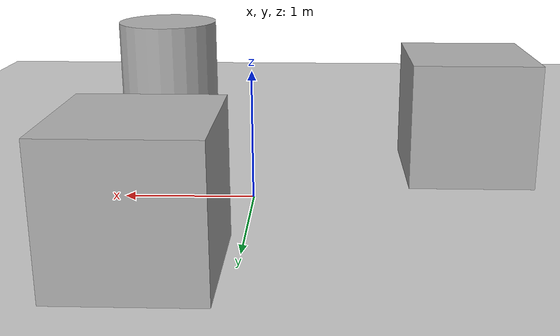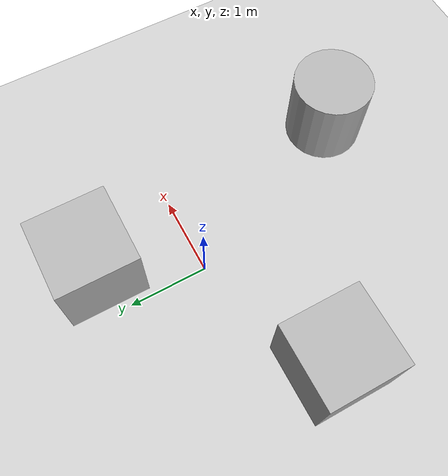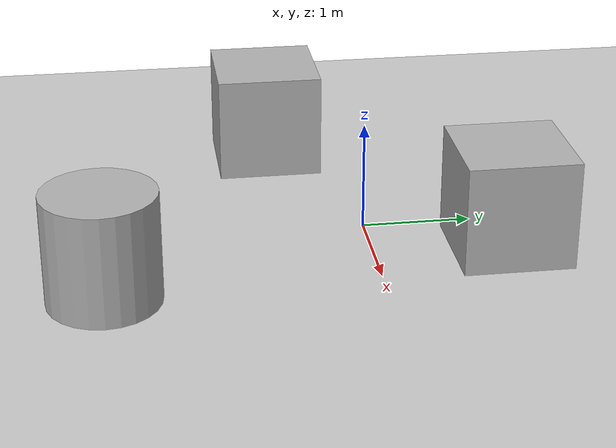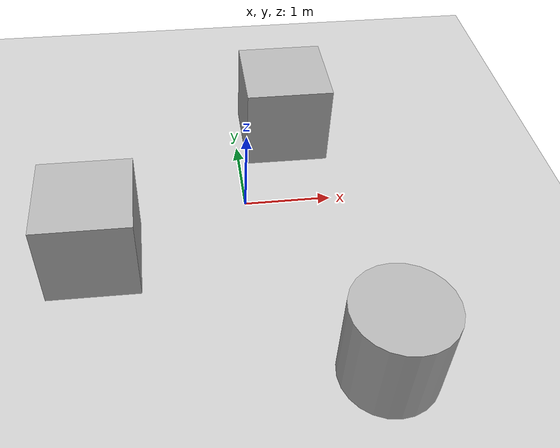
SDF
<?xml version="1.0" ?>
<sdf version="1.6">
  <world name="simple">
    <physics name="10ms" type="ignored">
      <max_step_size>0.01</max_step_size>
      <real_time_factor>1.0</real_time_factor>
      <real_time_update_rate>100</real_time_update_rate>
    </physics>
    <plugin
      filename="ignition-gazebo-physics-system"
      name="gz::sim::systems::Physics">
    </plugin>
    <plugin
      filename="ignition-gazebo-user-commands-system"
      name="gz::sim::systems::UserCommands">
    </plugin>
    <plugin
      filename="ignition-gazebo-scene-broadcaster-system"
      name="gz::sim::systems::SceneBroadcaster">
    </plugin>
    <plugin
      filename="ignition-gazebo-contact-system"
      name="gz::sim::systems::Contact">
    </plugin>

    <light type="directional" name="sun">
      <cast_shadows>true</cast_shadows>
      <pose>0 0 10 0 0 0</pose>
      <diffuse>0.8 0.8 0.8 1</diffuse>
      <specular>0.2 0.2 0.2 1</specular>
      <attenuation>
        <range>1000</range>
        <constant>0.9</constant>
        <linear>0.01</linear>
        <quadratic>0.001</quadratic>
      </attenuation>
      <direction>-0.5 0.1 -0.9</direction>
    </light>

    <model name="ground_plane">
      <static>true</static>
      <link name="link">
        <collision name="collision">
          <geometry>
            <plane>
              <normal>0 0 1</normal>
              <size>100 100</size>
            </plane>
          </geometry>
        </collision>
        <visual name="visual">
          <geometry>
            <plane>
              <normal>0 0 1</normal>
              <size>100 100</size>
            </plane>
          </geometry>
          <material>
            <ambient>0.8 0.8 0.8 1</ambient>
            <diffuse>0.8 0.8 0.8 1</diffuse>
            <specular>0.8 0.8 0.8 1</specular>
          </material>
        </visual>
      </link>
    </model>

    <model name='box'>
      <pose>0.596654 1.20805 0.5 0 0 -0</pose>
      <link name='box_link'>
        <inertial>
          <inertia>
            <ixx>0.16666</ixx>
            <ixy>0</ixy>
            <ixz>0</ixz>
            <iyy>0.16666</iyy>
            <iyz>0</iyz>
            <izz>0.16666</izz>
          </inertia>
          <mass>1</mass>
          <pose>0 0 0 0 -0 0</pose>
        </inertial>
        <collision name='box_collision'>
          <geometry>
            <box>
              <size>1 1 1</size>
            </box>
          </geometry>
          <surface>
            <friction>
              <ode/>
            </friction>
            <bounce/>
            <contact/>
          </surface>
        </collision>
        <visual name='box_visual'>
          <geometry>
            <box>
              <size>1 1 1</size>
            </box>
          </geometry>
          <material>
            <ambient>0.3 0.3 0.3 1</ambient>
            <diffuse>0.7 0.7 0.7 1</diffuse>
            <specular>1 1 1 1</specular>
          </material>
        </visual>
        <pose>0 0 0 0 -0 0</pose>
        <enable_wind>false</enable_wind>
      </link>
      <static>false</static>
      <self_collide>false</self_collide>
    </model>

    <model name='cylinder'>
      <pose>1.09405 -2.39699 0.499999 0 0 -0</pose>
      <link name='cylinder_link'>
        <inertial>
          <inertia>
            <ixx>0.14580000000000001</ixx>
            <ixy>0</ixy>
            <ixz>0</ixz>
            <iyy>0.14580000000000001</iyy>
            <iyz>0</iyz>
            <izz>0.125</izz>
          </inertia>
          <mass>1</mass>
          <pose>0 0 0 0 -0 0</pose>
        </inertial>
        <collision name='cylinder_collision'>
          <geometry>
            <cylinder>
              <radius>0.5</radius>
              <length>1</length>
            </cylinder>
          </geometry>
          <surface>
            <friction>
              <ode/>
            </friction>
            <bounce/>
            <contact/>
          </surface>
        </collision>
        <visual name='cylinder_visual'>
          <geometry>
            <cylinder>
              <radius>0.5</radius>
              <length>1</length>
            </cylinder>
          </geometry>
          <material>
            <ambient>0.3 0.3 0.3 1</ambient>
            <diffuse>0.7 0.7 0.7 1</diffuse>
            <specular>1 1 1 1</specular>
          </material>
        </visual>
        <pose>0 0 0 0 -0 0</pose>
        <enable_wind>false</enable_wind>
      </link>
      <static>false</static>
      <self_collide>false</self_collide>
    </model>

    <model name='box_0'>
      <pose>-1.72335 -0.718916 0.5 0 0 -0</pose>
      <link name='box_link'>
        <inertial>
          <inertia>
            <ixx>0.16666</ixx>
            <ixy>0</ixy>
            <ixz>0</ixz>
            <iyy>0.16666</iyy>
            <iyz>0</iyz>
            <izz>0.16666</izz>
          </inertia>
          <mass>1</mass>
          <pose>0 0 0 0 -0 0</pose>
        </inertial>
        <collision name='box_collision'>
          <geometry>
            <box>
              <size>1 1 1</size>
            </box>
          </geometry>
          <surface>
            <friction>
              <ode/>
            </friction>
            <bounce/>
            <contact/>
          </surface>
        </collision>
        <visual name='box_visual'>
          <geometry>
            <box>
              <size>1 1 1</size>
            </box>
          </geometry>
          <material>
            <ambient>0.3 0.3 0.3 1</ambient>
            <diffuse>0.7 0.7 0.7 1</diffuse>
            <specular>1 1 1 1</specular>
          </material>
        </visual>
        <pose>0 0 0 0 -0 0</pose>
        <enable_wind>false</enable_wind>
      </link>
      <static>false</static>
      <self_collide>false</self_collide>
    </model>

  </world>
</sdf>
